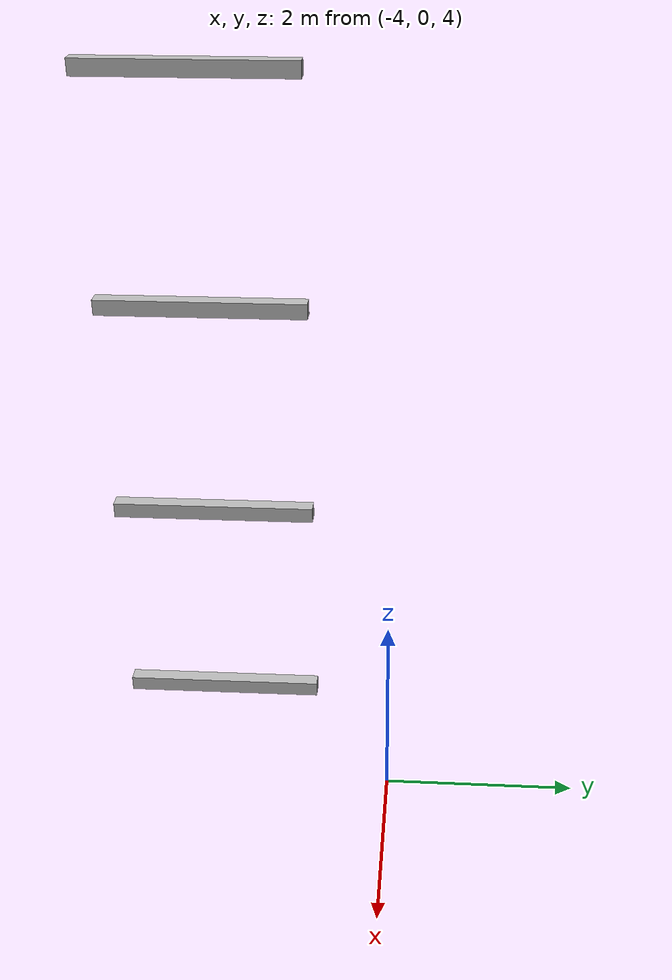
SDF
<sdf version="1.7">
 <world name="default">
  <model name="orthogonal_747_2.000.15_TS">
   <static>1</static>
   <link name="y_link_3_1_1">
    <inertial>
     <mass>1</mass>
     <inertia>
      <ixx>0.166667</ixx>
      <ixy>0</ixy>
      <ixz>0</ixz>
      <iyy>0.166667</iyy>
      <iyz>0</iyz>
      <izz>0.166667</izz>
     </inertia>
    </inertial>
    <pose>2.15 3.225 7.525 0 -0 0</pose>
    <visual name="visual_0">
     <laser_retro>2808</laser_retro>
     <geometry><box><size>0.15 1e-06 0.15</size></box></geometry>
     <material>
      <script><name>Gazebo/Grey</name><uri>file://media/materials/scripts/gazebo.material</uri></script>
      <shader type="pixel"><normal_map>__default__</normal_map></shader>
      <ambient>0.678 0.498 0.659 1</ambient>
      <diffuse>0.7 0.7 0.7 1</diffuse>
      <specular>0.01 0.01 0.01 1</specular>
      <emissive>0 0 0 1</emissive>
     </material>
     <pose>0 -1 0 0 -0 0</pose>
     <transparency>1</transparency>
    </visual>
    <visual name="visual_1">
     <laser_retro>2809</laser_retro>
     <geometry><box><size>0.15 1e-06 0.15</size></box></geometry>
     <material>
      <script><name>Gazebo/Grey</name><uri>file://media/materials/scripts/gazebo.material</uri></script>
      <shader type="pixel"><normal_map>__default__</normal_map></shader>
      <ambient>0.447 0.624 0.812 1</ambient>
      <diffuse>0.7 0.7 0.7 1</diffuse>
      <specular>0.01 0.01 0.01 1</specular>
      <emissive>0 0 0 1</emissive>
     </material>
     <pose>0 1 0 0 -0 0</pose>
     <transparency>1</transparency>
    </visual>
    <visual name="visual_2">
     <laser_retro>2810</laser_retro>
     <geometry><box><size>0.15 2 1e-06</size></box></geometry>
     <material>
      <script><name>Gazebo/Grey</name><uri>file://media/materials/scripts/gazebo.material</uri></script>
      <shader type="pixel"><normal_map>__default__</normal_map></shader>
      <ambient>0.988 0.686 0.243 1</ambient>
      <diffuse>0.7 0.7 0.7 1</diffuse>
      <specular>0.01 0.01 0.01 1</specular>
      <emissive>0 0 0 1</emissive>
     </material>
     <pose>0 0 -0.075 0 -0 0</pose>
     <transparency>1</transparency>
    </visual>
    <visual name="visual_3">
     <laser_retro>2811</laser_retro>
     <geometry><box><size>1e-06 2 0.15</size></box></geometry>
     <material>
      <script><name>Gazebo/Grey</name><uri>file://media/materials/scripts/gazebo.material</uri></script>
      <shader type="pixel"><normal_map>__default__</normal_map></shader>
      <ambient>0.988 0.914 0.31 1</ambient>
      <diffuse>0.7 0.7 0.7 1</diffuse>
      <specular>0.01 0.01 0.01 1</specular>
      <emissive>0 0 0 1</emissive>
     </material>
     <pose>0.075 0 0 0 -0 0</pose>
     <transparency>1</transparency>
    </visual>
    <visual name="visual_4">
     <laser_retro>2812</laser_retro>
     <geometry><box><size>0.15 2 1e-06</size></box></geometry>
     <material>
      <script><name>Gazebo/Grey</name><uri>file://media/materials/scripts/gazebo.material</uri></script>
      <shader type="pixel"><normal_map>__default__</normal_map></shader>
      <ambient>0.937 0.161 0.161 1</ambient>
      <diffuse>0.7 0.7 0.7 1</diffuse>
      <specular>0.01 0.01 0.01 1</specular>
      <emissive>0 0 0 1</emissive>
     </material>
     <pose>0 0 0.075 0 -0 0</pose>
     <transparency>1</transparency>
    </visual>
    <visual name="visual_5">
     <laser_retro>2813</laser_retro>
     <geometry><box><size>1e-06 2 0.15</size></box></geometry>
     <material>
      <script><name>Gazebo/Grey</name><uri>file://media/materials/scripts/gazebo.material</uri></script>
      <shader type="pixel"><normal_map>__default__</normal_map></shader>
      <ambient>0.541 0.886 0.204 1</ambient>
      <diffuse>0.7 0.7 0.7 1</diffuse>
      <specular>0.01 0.01 0.01 1</specular>
      <emissive>0 0 0 1</emissive>
     </material>
     <pose>-0.075 0 0 0 -0 0</pose>
     <transparency>1</transparency>
    </visual>
    <visual name="visual_texture">
     <geometry><box><size>0.149985 1.9998 0.149985</size></box></geometry>
     <material>
      <script>
       <uri>model://BASE_MODELS/simple_block_v2_textured/materials/scripts</uri>
       <uri>model://BASE_MODELS/simple_block_v2_textured/materials/textures</uri>
       <name>metal</name>
      </script>
     </material>
     <laser_retro>2814</laser_retro>
    </visual>
    <collision name="collision">
     <geometry><box><size>0.15 2 0.15</size></box></geometry>
     <surface>
      <friction>
       <ode><mu>1</mu><mu2>1</mu2><fdir1>0 0 0</fdir1><slip1>0</slip1><slip2>0</slip2></ode>
       <torsional>
        <coefficient>1</coefficient>
        <patch_radius>0</patch_radius>
        <surface_radius>0</surface_radius>
        <use_patch_radius>1</use_patch_radius>
        <ode><slip>0</slip></ode>
       </torsional>
      </friction>
      <bounce><restitution_coefficient>0</restitution_coefficient><threshold>1e+06</threshold></bounce>
      <contact>
       <collide_without_contact>0</collide_without_contact>
       <collide_without_contact_bitmask>1</collide_without_contact_bitmask>
       <collide_bitmask>1</collide_bitmask>
       <ode>
        <soft_cfm>0</soft_cfm>
        <soft_erp>0.2</soft_erp>
        <kp>1e+13</kp>
        <kd>1</kd>
        <max_vel>0.01</max_vel>
        <min_depth>0</min_depth>
       </ode>
       <bullet>
        <split_impulse>1</split_impulse>
        <split_impulse_penetration_threshold>-0.01</split_impulse_penetration_threshold>
        <soft_cfm>0</soft_cfm>
        <soft_erp>0.2</soft_erp>
        <kp>1e+13</kp>
        <kd>1</kd>
       </bullet>
      </contact>
     </surface>
    </collision>
   </link>
   <link name="y_link_4_1_1">
    <inertial>
     <mass>1</mass>
     <inertia>
      <ixx>0.166667</ixx>
      <ixy>0</ixy>
      <ixz>0</ixz>
      <iyy>0.166667</iyy>
      <iyz>0</iyz>
      <izz>0.166667</izz>
     </inertia>
    </inertial>
    <pose>2.15 3.225 9.675 0 -0 0</pose>
    <visual name="visual_0">
     <laser_retro>3711</laser_retro>
     <geometry><box><size>0.15 1e-06 0.15</size></box></geometry>
     <material>
      <script><name>Gazebo/Grey</name><uri>file://media/materials/scripts/gazebo.material</uri></script>
      <shader type="pixel"><normal_map>__default__</normal_map></shader>
      <ambient>0.678 0.498 0.659 1</ambient>
      <diffuse>0.7 0.7 0.7 1</diffuse>
      <specular>0.01 0.01 0.01 1</specular>
      <emissive>0 0 0 1</emissive>
     </material>
     <pose>0 -1 0 0 -0 0</pose>
     <transparency>1</transparency>
    </visual>
    <visual name="visual_1">
     <laser_retro>3712</laser_retro>
     <geometry><box><size>0.15 1e-06 0.15</size></box></geometry>
     <material>
      <script><name>Gazebo/Grey</name><uri>file://media/materials/scripts/gazebo.material</uri></script>
      <shader type="pixel"><normal_map>__default__</normal_map></shader>
      <ambient>0.447 0.624 0.812 1</ambient>
      <diffuse>0.7 0.7 0.7 1</diffuse>
      <specular>0.01 0.01 0.01 1</specular>
      <emissive>0 0 0 1</emissive>
     </material>
     <pose>0 1 0 0 -0 0</pose>
     <transparency>1</transparency>
    </visual>
    <visual name="visual_2">
     <laser_retro>3713</laser_retro>
     <geometry><box><size>0.15 2 1e-06</size></box></geometry>
     <material>
      <script><name>Gazebo/Grey</name><uri>file://media/materials/scripts/gazebo.material</uri></script>
      <shader type="pixel"><normal_map>__default__</normal_map></shader>
      <ambient>0.988 0.686 0.243 1</ambient>
      <diffuse>0.7 0.7 0.7 1</diffuse>
      <specular>0.01 0.01 0.01 1</specular>
      <emissive>0 0 0 1</emissive>
     </material>
     <pose>0 0 -0.075 0 -0 0</pose>
     <transparency>1</transparency>
    </visual>
    <visual name="visual_3">
     <laser_retro>3714</laser_retro>
     <geometry><box><size>1e-06 2 0.15</size></box></geometry>
     <material>
      <script><name>Gazebo/Grey</name><uri>file://media/materials/scripts/gazebo.material</uri></script>
      <shader type="pixel"><normal_map>__default__</normal_map></shader>
      <ambient>0.988 0.914 0.31 1</ambient>
      <diffuse>0.7 0.7 0.7 1</diffuse>
      <specular>0.01 0.01 0.01 1</specular>
      <emissive>0 0 0 1</emissive>
     </material>
     <pose>0.075 0 0 0 -0 0</pose>
     <transparency>1</transparency>
    </visual>
    <visual name="visual_4">
     <laser_retro>3715</laser_retro>
     <geometry><box><size>0.15 2 1e-06</size></box></geometry>
     <material>
      <script><name>Gazebo/Grey</name><uri>file://media/materials/scripts/gazebo.material</uri></script>
      <shader type="pixel"><normal_map>__default__</normal_map></shader>
      <ambient>0.937 0.161 0.161 1</ambient>
      <diffuse>0.7 0.7 0.7 1</diffuse>
      <specular>0.01 0.01 0.01 1</specular>
      <emissive>0 0 0 1</emissive>
     </material>
     <pose>0 0 0.075 0 -0 0</pose>
     <transparency>1</transparency>
    </visual>
    <visual name="visual_5">
     <laser_retro>3716</laser_retro>
     <geometry><box><size>1e-06 2 0.15</size></box></geometry>
     <material>
      <script><name>Gazebo/Grey</name><uri>file://media/materials/scripts/gazebo.material</uri></script>
      <shader type="pixel"><normal_map>__default__</normal_map></shader>
      <ambient>0.541 0.886 0.204 1</ambient>
      <diffuse>0.7 0.7 0.7 1</diffuse>
      <specular>0.01 0.01 0.01 1</specular>
      <emissive>0 0 0 1</emissive>
     </material>
     <pose>-0.075 0 0 0 -0 0</pose>
     <transparency>1</transparency>
    </visual>
    <visual name="visual_texture">
     <geometry><box><size>0.149985 1.9998 0.149985</size></box></geometry>
     <material>
      <script>
       <uri>model://BASE_MODELS/simple_block_v2_textured/materials/scripts</uri>
       <uri>model://BASE_MODELS/simple_block_v2_textured/materials/textures</uri>
       <name>metal</name>
      </script>
     </material>
     <laser_retro>3717</laser_retro>
    </visual>
    <collision name="collision">
     <geometry><box><size>0.15 2 0.15</size></box></geometry>
     <surface>
      <friction>
       <ode><mu>1</mu><mu2>1</mu2><fdir1>0 0 0</fdir1><slip1>0</slip1><slip2>0</slip2></ode>
       <torsional>
        <coefficient>1</coefficient>
        <patch_radius>0</patch_radius>
        <surface_radius>0</surface_radius>
        <use_patch_radius>1</use_patch_radius>
        <ode><slip>0</slip></ode>
       </torsional>
      </friction>
      <bounce><restitution_coefficient>0</restitution_coefficient><threshold>1e+06</threshold></bounce>
      <contact>
       <collide_without_contact>0</collide_without_contact>
       <collide_without_contact_bitmask>1</collide_without_contact_bitmask>
       <collide_bitmask>1</collide_bitmask>
       <ode>
        <soft_cfm>0</soft_cfm>
        <soft_erp>0.2</soft_erp>
        <kp>1e+13</kp>
        <kd>1</kd>
        <max_vel>0.01</max_vel>
        <min_depth>0</min_depth>
       </ode>
       <bullet>
        <split_impulse>1</split_impulse>
        <split_impulse_penetration_threshold>-0.01</split_impulse_penetration_threshold>
        <soft_cfm>0</soft_cfm>
        <soft_erp>0.2</soft_erp>
        <kp>1e+13</kp>
        <kd>1</kd>
       </bullet>
      </contact>
     </surface>
    </collision>
   </link>
   <link name="y_link_5_1_1">
    <inertial>
     <mass>1</mass>
     <inertia>
      <ixx>0.166667</ixx>
      <ixy>0</ixy>
      <ixz>0</ixz>
      <iyy>0.166667</iyy>
      <iyz>0</iyz>
      <izz>0.166667</izz>
     </inertia>
    </inertial>
    <pose>2.15 3.225 11.825 0 -0 0</pose>
    <visual name="visual_0">
     <laser_retro>4614</laser_retro>
     <geometry><box><size>0.15 1e-06 0.15</size></box></geometry>
     <material>
      <script><name>Gazebo/Grey</name><uri>file://media/materials/scripts/gazebo.material</uri></script>
      <shader type="pixel"><normal_map>__default__</normal_map></shader>
      <ambient>0.678 0.498 0.659 1</ambient>
      <diffuse>0.7 0.7 0.7 1</diffuse>
      <specular>0.01 0.01 0.01 1</specular>
      <emissive>0 0 0 1</emissive>
     </material>
     <pose>0 -1 0 0 -0 0</pose>
     <transparency>1</transparency>
    </visual>
    <visual name="visual_1">
     <laser_retro>4615</laser_retro>
     <geometry><box><size>0.15 1e-06 0.15</size></box></geometry>
     <material>
      <script><name>Gazebo/Grey</name><uri>file://media/materials/scripts/gazebo.material</uri></script>
      <shader type="pixel"><normal_map>__default__</normal_map></shader>
      <ambient>0.447 0.624 0.812 1</ambient>
      <diffuse>0.7 0.7 0.7 1</diffuse>
      <specular>0.01 0.01 0.01 1</specular>
      <emissive>0 0 0 1</emissive>
     </material>
     <pose>0 1 0 0 -0 0</pose>
     <transparency>1</transparency>
    </visual>
    <visual name="visual_2">
     <laser_retro>4616</laser_retro>
     <geometry><box><size>0.15 2 1e-06</size></box></geometry>
     <material>
      <script><name>Gazebo/Grey</name><uri>file://media/materials/scripts/gazebo.material</uri></script>
      <shader type="pixel"><normal_map>__default__</normal_map></shader>
      <ambient>0.988 0.686 0.243 1</ambient>
      <diffuse>0.7 0.7 0.7 1</diffuse>
      <specular>0.01 0.01 0.01 1</specular>
      <emissive>0 0 0 1</emissive>
     </material>
     <pose>0 0 -0.075 0 -0 0</pose>
     <transparency>1</transparency>
    </visual>
    <visual name="visual_3">
     <laser_retro>4617</laser_retro>
     <geometry><box><size>1e-06 2 0.15</size></box></geometry>
     <material>
      <script><name>Gazebo/Grey</name><uri>file://media/materials/scripts/gazebo.material</uri></script>
      <shader type="pixel"><normal_map>__default__</normal_map></shader>
      <ambient>0.988 0.914 0.31 1</ambient>
      <diffuse>0.7 0.7 0.7 1</diffuse>
      <specular>0.01 0.01 0.01 1</specular>
      <emissive>0 0 0 1</emissive>
     </material>
     <pose>0.075 0 0 0 -0 0</pose>
     <transparency>1</transparency>
    </visual>
    <visual name="visual_4">
     <laser_retro>4618</laser_retro>
     <geometry><box><size>0.15 2 1e-06</size></box></geometry>
     <material>
      <script><name>Gazebo/Grey</name><uri>file://media/materials/scripts/gazebo.material</uri></script>
      <shader type="pixel"><normal_map>__default__</normal_map></shader>
      <ambient>0.937 0.161 0.161 1</ambient>
      <diffuse>0.7 0.7 0.7 1</diffuse>
      <specular>0.01 0.01 0.01 1</specular>
      <emissive>0 0 0 1</emissive>
     </material>
     <pose>0 0 0.075 0 -0 0</pose>
     <transparency>1</transparency>
    </visual>
    <visual name="visual_5">
     <laser_retro>4619</laser_retro>
     <geometry><box><size>1e-06 2 0.15</size></box></geometry>
     <material>
      <script><name>Gazebo/Grey</name><uri>file://media/materials/scripts/gazebo.material</uri></script>
      <shader type="pixel"><normal_map>__default__</normal_map></shader>
      <ambient>0.541 0.886 0.204 1</ambient>
      <diffuse>0.7 0.7 0.7 1</diffuse>
      <specular>0.01 0.01 0.01 1</specular>
      <emissive>0 0 0 1</emissive>
     </material>
     <pose>-0.075 0 0 0 -0 0</pose>
     <transparency>1</transparency>
    </visual>
    <visual name="visual_texture">
     <geometry><box><size>0.149985 1.9998 0.149985</size></box></geometry>
     <material>
      <script>
       <uri>model://BASE_MODELS/simple_block_v2_textured/materials/scripts</uri>
       <uri>model://BASE_MODELS/simple_block_v2_textured/materials/textures</uri>
       <name>metal</name>
      </script>
     </material>
     <laser_retro>4620</laser_retro>
    </visual>
    <collision name="collision">
     <geometry><box><size>0.15 2 0.15</size></box></geometry>
     <surface>
      <friction>
       <ode><mu>1</mu><mu2>1</mu2><fdir1>0 0 0</fdir1><slip1>0</slip1><slip2>0</slip2></ode>
       <torsional>
        <coefficient>1</coefficient>
        <patch_radius>0</patch_radius>
        <surface_radius>0</surface_radius>
        <use_patch_radius>1</use_patch_radius>
        <ode><slip>0</slip></ode>
       </torsional>
      </friction>
      <bounce><restitution_coefficient>0</restitution_coefficient><threshold>1e+06</threshold></bounce>
      <contact>
       <collide_without_contact>0</collide_without_contact>
       <collide_without_contact_bitmask>1</collide_without_contact_bitmask>
       <collide_bitmask>1</collide_bitmask>
       <ode>
        <soft_cfm>0</soft_cfm>
        <soft_erp>0.2</soft_erp>
        <kp>1e+13</kp>
        <kd>1</kd>
        <max_vel>0.01</max_vel>
        <min_depth>0</min_depth>
       </ode>
       <bullet>
        <split_impulse>1</split_impulse>
        <split_impulse_penetration_threshold>-0.01</split_impulse_penetration_threshold>
        <soft_cfm>0</soft_cfm>
        <soft_erp>0.2</soft_erp>
        <kp>1e+13</kp>
        <kd>1</kd>
       </bullet>
      </contact>
     </surface>
    </collision>
   </link>
   <link name="y_link_6_1_1">
    <inertial>
     <mass>1</mass>
     <inertia>
      <ixx>0.166667</ixx>
      <ixy>0</ixy>
      <ixz>0</ixz>
      <iyy>0.166667</iyy>
      <iyz>0</iyz>
      <izz>0.166667</izz>
     </inertia>
    </inertial>
    <pose>2.15 3.225 13.975 0 -0 0</pose>
    <visual name="visual_0">
     <laser_retro>5517</laser_retro>
     <geometry><box><size>0.15 1e-06 0.15</size></box></geometry>
     <material>
      <script><name>Gazebo/Grey</name><uri>file://media/materials/scripts/gazebo.material</uri></script>
      <shader type="pixel"><normal_map>__default__</normal_map></shader>
      <ambient>0.678 0.498 0.659 1</ambient>
      <diffuse>0.7 0.7 0.7 1</diffuse>
      <specular>0.01 0.01 0.01 1</specular>
      <emissive>0 0 0 1</emissive>
     </material>
     <pose>0 -1 0 0 -0 0</pose>
     <transparency>1</transparency>
    </visual>
    <visual name="visual_1">
     <laser_retro>5518</laser_retro>
     <geometry><box><size>0.15 1e-06 0.15</size></box></geometry>
     <material>
      <script><name>Gazebo/Grey</name><uri>file://media/materials/scripts/gazebo.material</uri></script>
      <shader type="pixel"><normal_map>__default__</normal_map></shader>
      <ambient>0.447 0.624 0.812 1</ambient>
      <diffuse>0.7 0.7 0.7 1</diffuse>
      <specular>0.01 0.01 0.01 1</specular>
      <emissive>0 0 0 1</emissive>
     </material>
     <pose>0 1 0 0 -0 0</pose>
     <transparency>1</transparency>
    </visual>
    <visual name="visual_2">
     <laser_retro>5519</laser_retro>
     <geometry><box><size>0.15 2 1e-06</size></box></geometry>
     <material>
      <script><name>Gazebo/Grey</name><uri>file://media/materials/scripts/gazebo.material</uri></script>
      <shader type="pixel"><normal_map>__default__</normal_map></shader>
      <ambient>0.988 0.686 0.243 1</ambient>
      <diffuse>0.7 0.7 0.7 1</diffuse>
      <specular>0.01 0.01 0.01 1</specular>
      <emissive>0 0 0 1</emissive>
     </material>
     <pose>0 0 -0.075 0 -0 0</pose>
     <transparency>1</transparency>
    </visual>
    <visual name="visual_3">
     <laser_retro>5520</laser_retro>
     <geometry><box><size>1e-06 2 0.15</size></box></geometry>
     <material>
      <script><name>Gazebo/Grey</name><uri>file://media/materials/scripts/gazebo.material</uri></script>
      <shader type="pixel"><normal_map>__default__</normal_map></shader>
      <ambient>0.988 0.914 0.31 1</ambient>
      <diffuse>0.7 0.7 0.7 1</diffuse>
      <specular>0.01 0.01 0.01 1</specular>
      <emissive>0 0 0 1</emissive>
     </material>
     <pose>0.075 0 0 0 -0 0</pose>
     <transparency>1</transparency>
    </visual>
    <visual name="visual_4">
     <laser_retro>5521</laser_retro>
     <geometry><box><size>0.15 2 1e-06</size></box></geometry>
     <material>
      <script><name>Gazebo/Grey</name><uri>file://media/materials/scripts/gazebo.material</uri></script>
      <shader type="pixel"><normal_map>__default__</normal_map></shader>
      <ambient>0.937 0.161 0.161 1</ambient>
      <diffuse>0.7 0.7 0.7 1</diffuse>
      <specular>0.01 0.01 0.01 1</specular>
      <emissive>0 0 0 1</emissive>
     </material>
     <pose>0 0 0.075 0 -0 0</pose>
     <transparency>1</transparency>
    </visual>
    <visual name="visual_5">
     <laser_retro>5522</laser_retro>
     <geometry><box><size>1e-06 2 0.15</size></box></geometry>
     <material>
      <script><name>Gazebo/Grey</name><uri>file://media/materials/scripts/gazebo.material</uri></script>
      <shader type="pixel"><normal_map>__default__</normal_map></shader>
      <ambient>0.541 0.886 0.204 1</ambient>
      <diffuse>0.7 0.7 0.7 1</diffuse>
      <specular>0.01 0.01 0.01 1</specular>
      <emissive>0 0 0 1</emissive>
     </material>
     <pose>-0.075 0 0 0 -0 0</pose>
     <transparency>1</transparency>
    </visual>
    <visual name="visual_texture">
     <geometry><box><size>0.149985 1.9998 0.149985</size></box></geometry>
     <material>
      <script>
       <uri>model://BASE_MODELS/simple_block_v2_textured/materials/scripts</uri>
       <uri>model://BASE_MODELS/simple_block_v2_textured/materials/textures</uri>
       <name>metal</name>
      </script>
     </material>
     <laser_retro>5523</laser_retro>
    </visual>
    <collision name="collision">
     <geometry><box><size>0.15 2 0.15</size></box></geometry>
     <surface>
      <friction>
       <ode><mu>1</mu><mu2>1</mu2><fdir1>0 0 0</fdir1><slip1>0</slip1><slip2>0</slip2></ode>
       <torsional>
        <coefficient>1</coefficient>
        <patch_radius>0</patch_radius>
        <surface_radius>0</surface_radius>
        <use_patch_radius>1</use_patch_radius>
        <ode><slip>0</slip></ode>
       </torsional>
      </friction>
      <bounce><restitution_coefficient>0</restitution_coefficient><threshold>1e+06</threshold></bounce>
      <contact>
       <collide_without_contact>0</collide_without_contact>
       <collide_without_contact_bitmask>1</collide_without_contact_bitmask>
       <collide_bitmask>1</collide_bitmask>
       <ode>
        <soft_cfm>0</soft_cfm>
        <soft_erp>0.2</soft_erp>
        <kp>1e+13</kp>
        <kd>1</kd>
        <max_vel>0.01</max_vel>
        <min_depth>0</min_depth>
       </ode>
       <bullet>
        <split_impulse>1</split_impulse>
        <split_impulse_penetration_threshold>-0.01</split_impulse_penetration_threshold>
        <soft_cfm>0</soft_cfm>
        <soft_erp>0.2</soft_erp>
        <kp>1e+13</kp>
        <kd>1</kd>
       </bullet>
      </contact>
     </surface>
    </collision>
   </link>
   <pose>-6.47624 -5 -2.5 0 -0 0</pose>
  </model>
 </world>
</sdf>
